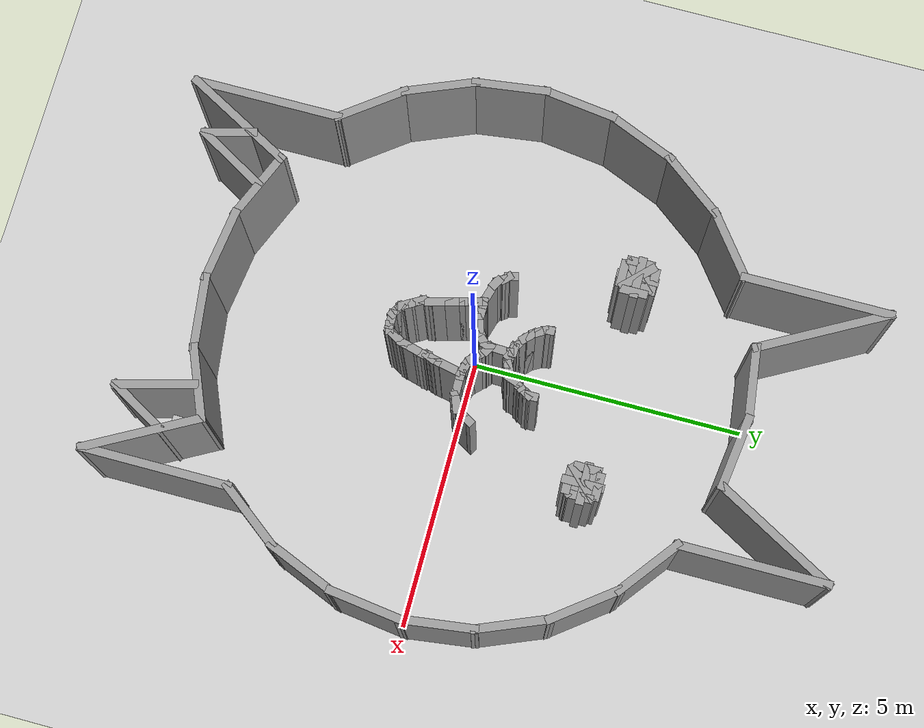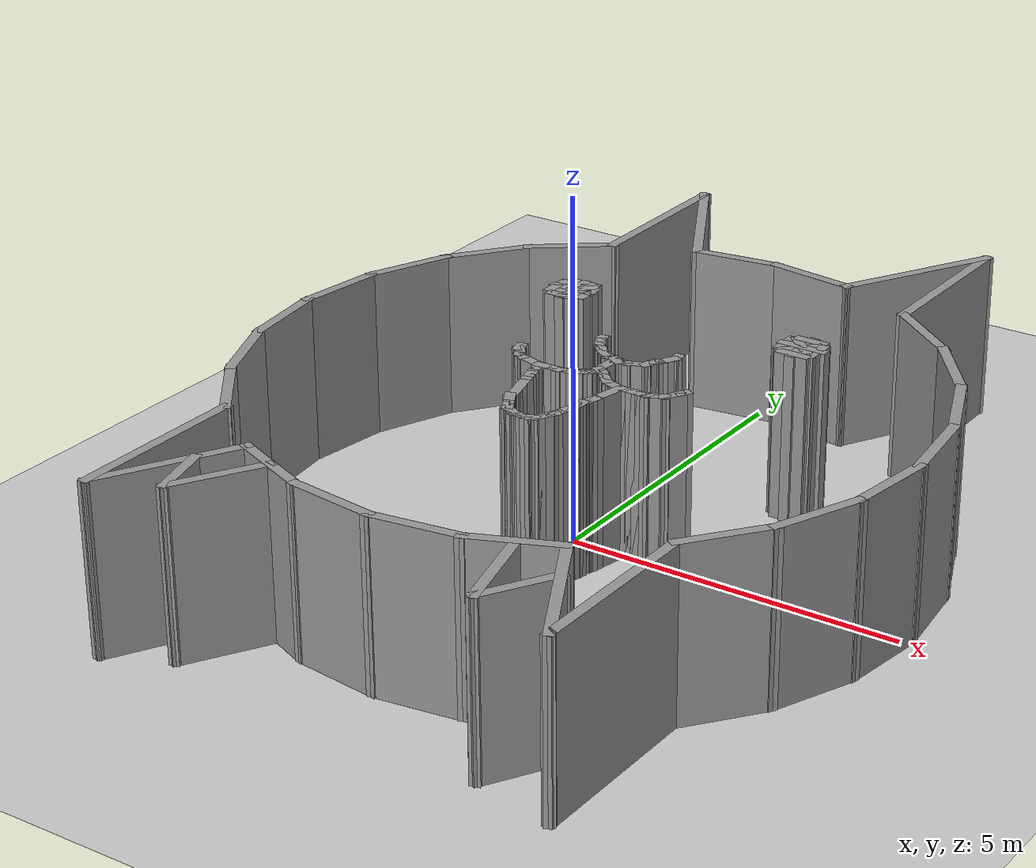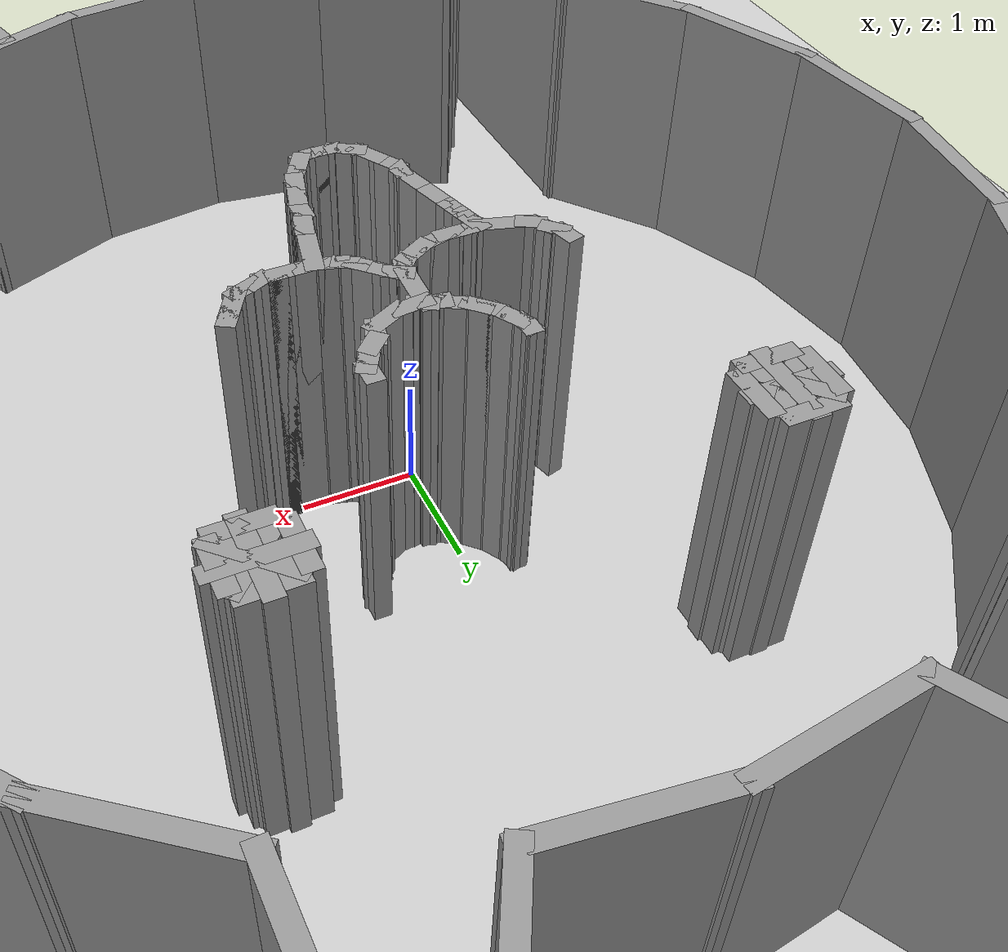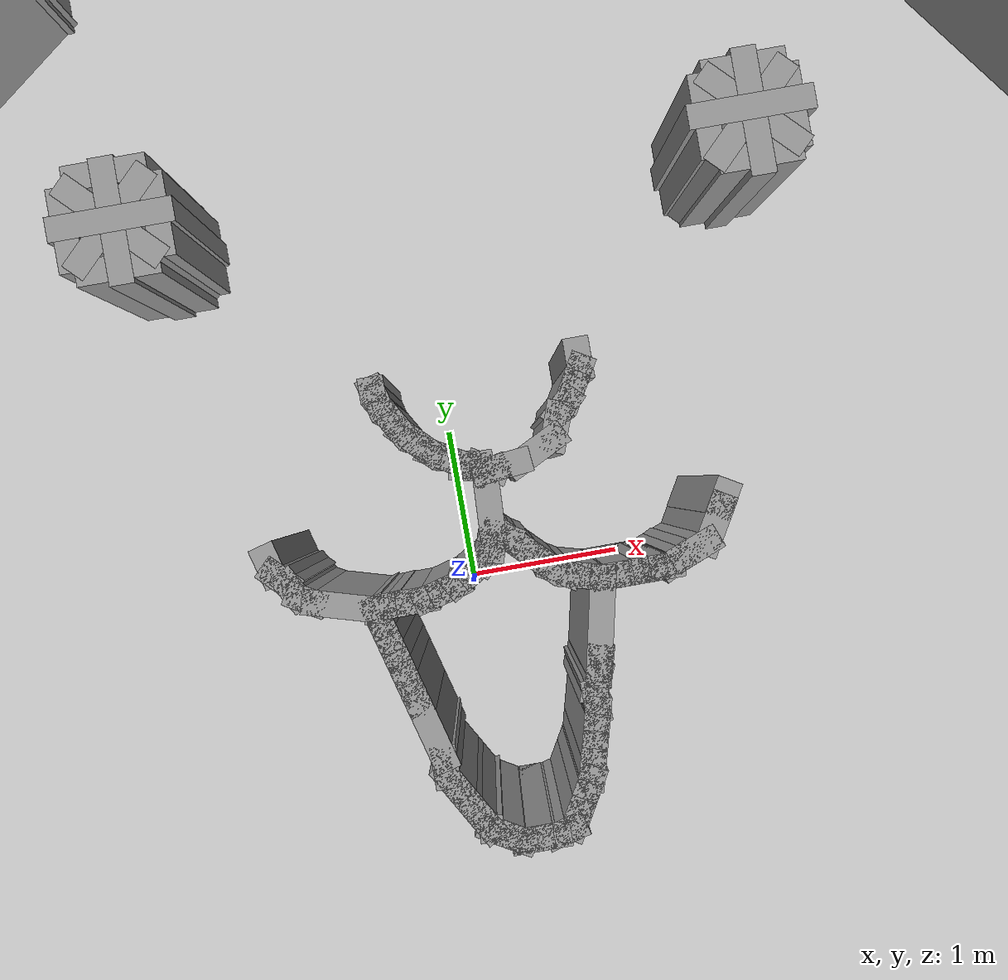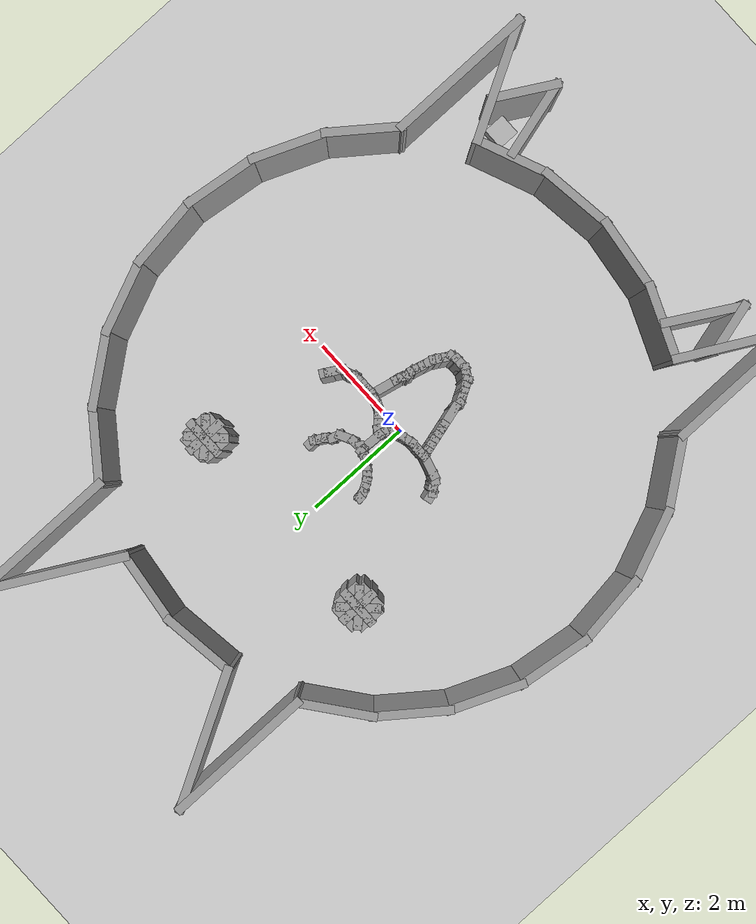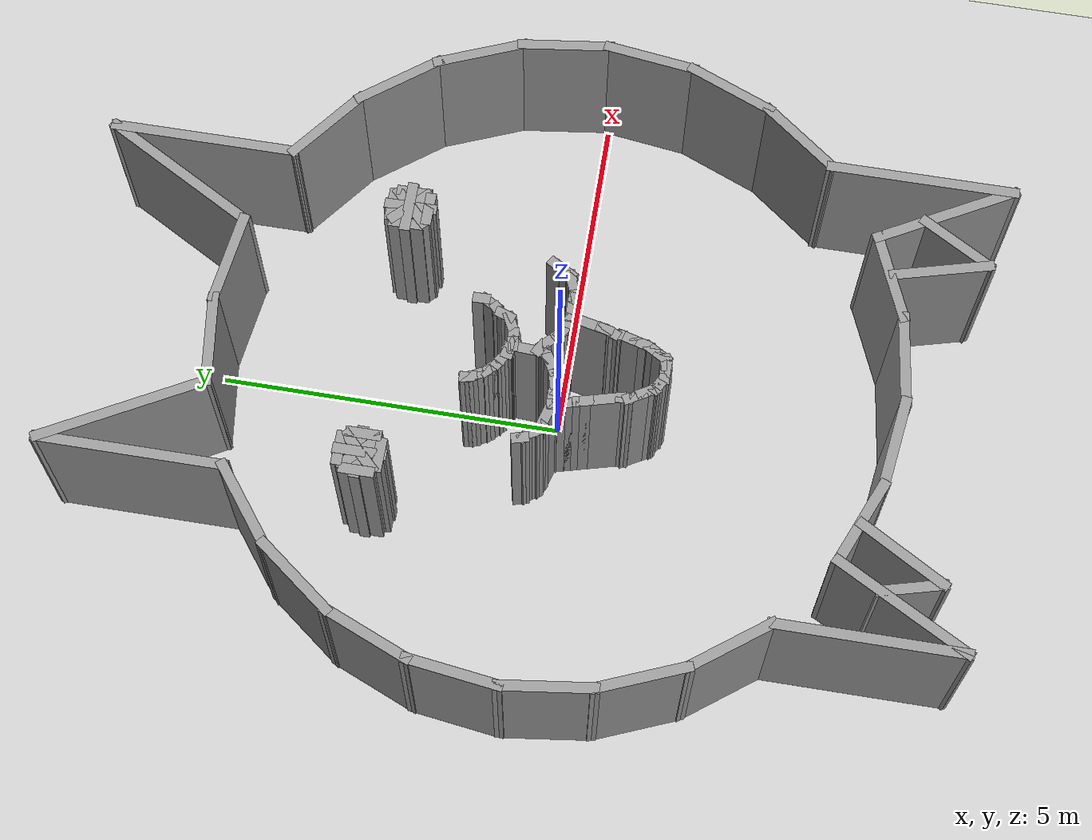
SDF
<?xml version="1.0" ?>
<sdf version="1.4">
	<world name="default">

		<include>
			<uri>model://ground_plane</uri>
		</include>

		<include>
			<uri>model://sun</uri>
		</include>

		<scene>
			<shadows>false</shadows>
		</scene>

		<gui fullscreen='0'>
			<camera name='user_camera'>
				<pose frame=''>0.319654 -0.235002 9.29441 0 1.5138 0.009599</pose>
				<view_controller>orbit</view_controller>
				<projection_type>perspective</projection_type>
			</camera>
		</gui>

		<physics type="ode">
			<real_time_update_rate>1000.0</real_time_update_rate>
			<max_step_size>0.001</max_step_size>
			<real_time_factor>1</real_time_factor>
			<ode>
				<solver>
					<type>quick</type>
					<iters>150</iters>
					<precon_iters>0</precon_iters>
					<sor>1.400000</sor>
					<use_dynamic_moi_rescaling>1</use_dynamic_moi_rescaling>
				</solver>
				<constraints>
					<cfm>0.00001</cfm>
					<erp>0.2</erp>
					<contact_max_correcting_vel>2000.000000</contact_max_correcting_vel>
					<contact_surface_layer>0.01000</contact_surface_layer>
				</constraints>
			</ode>
		</physics>

		<model name="cat_world">
			<static>1</static>
			<include>
				<uri>model://cat</uri>
			</include>
		</model>

		<model name="syy_cube">
			<include>
				<uri>model://syy_cube</uri>
				<pose>2.46 -4.76 0.5 0 -1.5032 3.14</pose>
			</include>
		</model>

	</world>
</sdf>

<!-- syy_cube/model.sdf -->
<sdf version='1.6'>
  <model name='syy_cube'>
    <link name='link_0'>
      <inertial>
        <mass>1</mass>
        <inertia>
          <ixx>0.166667</ixx>
          <ixy>0</ixy>
          <ixz>0</ixz>
          <iyy>0.166667</iyy>
          <iyz>0</iyz>
          <izz>0.166667</izz>
        </inertia>
        <pose>0 0 0 0 -0 0</pose>
      </inertial>
      <pose>-0 0 0 0 -0 0</pose>
      <gravity>1</gravity>
      <self_collide>0</self_collide>
      <kinematic>0</kinematic>
      <enable_wind>0</enable_wind>
      <visual name='visual'>
        <pose>0 0 0 0 -0 0</pose>
        <geometry>
          <mesh>
            <uri>model://syy_cube/meshes/syy_cube.dae</uri>
            <scale>0.2 0.2 0.2</scale>
          </mesh>
        </geometry>
        <material>
          <lighting>0</lighting>
        </material>
        <transparency>0</transparency>
        <cast_shadows>1</cast_shadows>
      </visual>
      <collision name='collision'>
        <laser_retro>0</laser_retro>
        <max_contacts>10</max_contacts>
        <pose>0 0 0 0 -0 0</pose>
        <geometry>
          <mesh>
            <uri>model://syy_cube/meshes/syy_cube.dae</uri>
            <scale>0.2 0.2 0.2</scale>
          </mesh>
        </geometry>
        <surface>
          <friction>
            <ode>
              <mu>1</mu>
              <mu2>1</mu2>
              <fdir1>0 0 0</fdir1>
              <slip1>0</slip1>
              <slip2>0</slip2>
            </ode>
            <torsional>
              <coefficient>1</coefficient>
              <patch_radius>0</patch_radius>
              <surface_radius>0</surface_radius>
              <use_patch_radius>1</use_patch_radius>
              <ode>
                <slip>0</slip>
              </ode>
            </torsional>
          </friction>
          <bounce>
            <restitution_coefficient>0</restitution_coefficient>
            <threshold>1e+06</threshold>
          </bounce>
          <contact>
            <collide_without_contact>0</collide_without_contact>
            <collide_without_contact_bitmask>1</collide_without_contact_bitmask>
            <collide_bitmask>1</collide_bitmask>
            <ode>
              <soft_cfm>0</soft_cfm>
              <soft_erp>0.2</soft_erp>
              <kp>1e+13</kp>
              <kd>1</kd>
              <max_vel>0.01</max_vel>
              <min_depth>0</min_depth>
            </ode>
            <bullet>
              <split_impulse>1</split_impulse>
              <split_impulse_penetration_threshold>-0.01</split_impulse_penetration_threshold>
              <soft_cfm>0</soft_cfm>
              <soft_erp>0.2</soft_erp>
              <kp>1e+13</kp>
              <kd>1</kd>
            </bullet>
          </contact>
        </surface>
      </collision>
    </link>
    <static>0</static>
    <allow_auto_disable>1</allow_auto_disable>
  </model>
</sdf>
